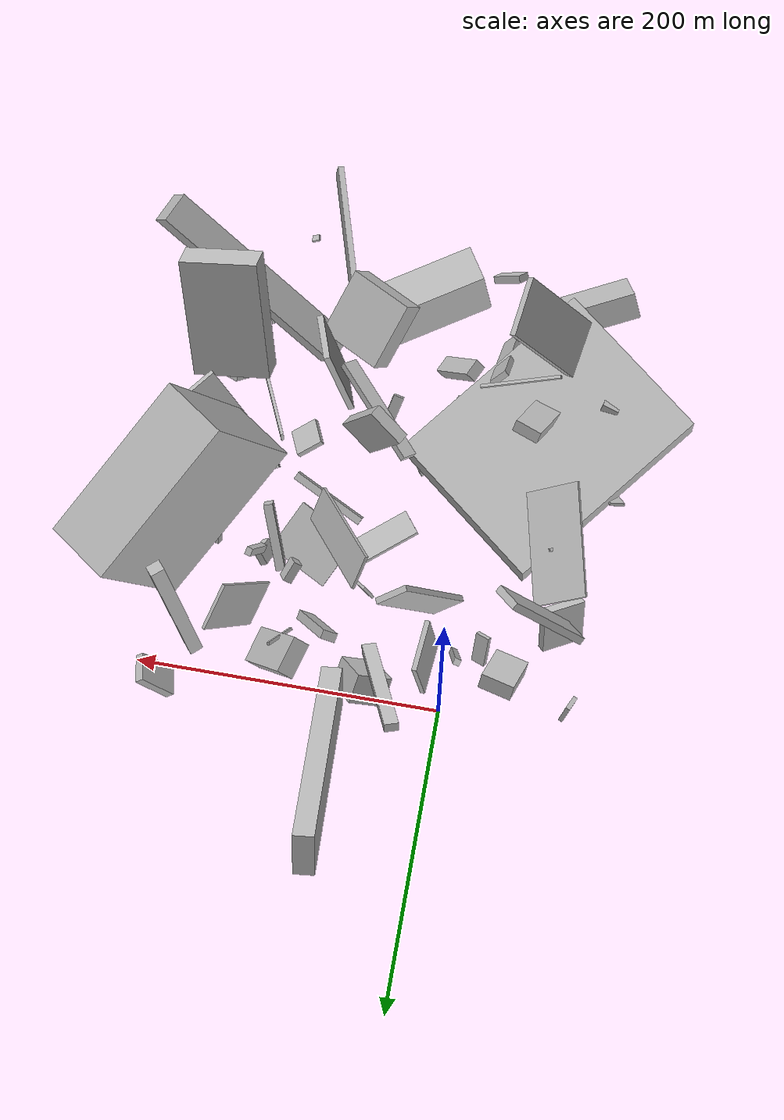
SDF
<sdf version="1.6">
 <world name="default">
  <model name="building_3">
   <static>0</static>
   <pose>5.835858461507819 -122.21662197756149 44.71238421912026 -0.4865778353604829 -1.474053561694862 1.3846577245615164</pose>
   <link name="link">
    <gravity>0</gravity>
    <pose>0 0 74.5 0 0 0</pose>
    <collision name="collision"><geometry><box><size>22 115 149</size></box></geometry></collision>
    <visual name="visual">
     <cast_shadows>0</cast_shadows>
     <geometry><box><size>22 115 149</size></box></geometry>
     <material>
      <script>
       <uri>model://HANNAS_wall/materials/scripts</uri>
       <uri>model://HANNAS_wall/materials/textures</uri>
       <name>vrc/HANNAS_wall</name>
      </script>
     </material>
    </visual>
   </link>
  </model>
  <model name="building_5">
   <static>0</static>
   <pose>65.79338038084802 15.389795078532417 80.16013095305803 -0.07329744564465657 -0.9631267049949173 -1.4160894481976734</pose>
   <link name="link">
    <gravity>0</gravity>
    <pose>0 0 75.0 0 0 0</pose>
    <collision name="collision"><geometry><box><size>31 13 150</size></box></geometry></collision>
    <visual name="visual">
     <cast_shadows>0</cast_shadows>
     <geometry><box><size>31 13 150</size></box></geometry>
     <material>
      <script>
       <uri>model://HANNAS_wall/materials/scripts</uri>
       <uri>model://HANNAS_wall/materials/textures</uri>
       <name>vrc/HANNAS_wall</name>
      </script>
     </material>
    </visual>
   </link>
  </model>
  <model name="building_15">
   <static>0</static>
   <pose>168.70893720154496 -190.80330866939033 55.37333430799978 -0.20980299649126538 0.5808129253188291 -1.6435773203934128</pose>
   <link name="link">
    <gravity>0</gravity>
    <pose>0 0 42.5 0 0 0</pose>
    <collision name="collision"><geometry><box><size>18 51 85</size></box></geometry></collision>
    <visual name="visual">
     <cast_shadows>0</cast_shadows>
     <geometry><box><size>18 51 85</size></box></geometry>
     <material>
      <script>
       <uri>model://HANNAS_wall/materials/scripts</uri>
       <uri>model://HANNAS_wall/materials/textures</uri>
       <name>vrc/HANNAS_wall</name>
      </script>
     </material>
    </visual>
   </link>
  </model>
  <model name="building_16">
   <static>0</static>
   <pose>172.4480563789559 -256.06530838762717 52.13919398344124 -0.10142437449352978 -0.6048599510881316 -0.36942929497885785</pose>
   <link name="link">
    <gravity>0</gravity>
    <pose>0 0 9.0 0 0 0</pose>
    <collision name="collision"><geometry><box><size>150 21 18</size></box></geometry></collision>
    <visual name="visual">
     <cast_shadows>0</cast_shadows>
     <geometry><box><size>150 21 18</size></box></geometry>
     <material>
      <script>
       <uri>model://HANNAS_wall/materials/scripts</uri>
       <uri>model://HANNAS_wall/materials/textures</uri>
       <name>vrc/HANNAS_wall</name>
      </script>
     </material>
    </visual>
   </link>
  </model>
  <model name="building_27">
   <static>0</static>
   <pose>132.2567938228932 -82.57854683447687 13.670138133554069 0.829152997326332 0.5826017921094884 -1.844322049395809</pose>
   <link name="link">
    <gravity>0</gravity>
    <pose>0 0 2.5 0 0 0</pose>
    <collision name="collision"><geometry><box><size>15 11 5</size></box></geometry></collision>
    <visual name="visual">
     <cast_shadows>0</cast_shadows>
     <geometry><box><size>15 11 5</size></box></geometry>
     <material>
      <script>
       <uri>model://HANNAS_wall/materials/scripts</uri>
       <uri>model://HANNAS_wall/materials/textures</uri>
       <name>vrc/HANNAS_wall</name>
      </script>
     </material>
    </visual>
   </link>
  </model>
  <model name="building_34">
   <static>0</static>
   <pose>164.1462934367311 -87.00258705766674 91.69687753364849 0.14673647543493426 0.40451893321257865 0.9899473387207495</pose>
   <link name="link">
    <gravity>0</gravity>
    <pose>0 0 48.5 0 0 0</pose>
    <collision name="collision"><geometry><box><size>114 45 97</size></box></geometry></collision>
    <visual name="visual">
     <cast_shadows>0</cast_shadows>
     <geometry><box><size>114 45 97</size></box></geometry>
     <material>
      <script>
       <uri>model://HANNAS_wall/materials/scripts</uri>
       <uri>model://HANNAS_wall/materials/textures</uri>
       <name>vrc/HANNAS_wall</name>
      </script>
     </material>
    </visual>
   </link>
  </model>
  <model name="building_37">
   <static>0</static>
   <pose>166.95054671278797 -17.908595503135512 85.73106465991597 1.6184008188012624 -0.08403401055581426 2.273886820849268</pose>
   <link name="link">
    <gravity>0</gravity>
    <pose>0 0 4.5 0 0 0</pose>
    <collision name="collision"><geometry><box><size>7 150 9</size></box></geometry></collision>
    <visual name="visual">
     <cast_shadows>0</cast_shadows>
     <geometry><box><size>7 150 9</size></box></geometry>
     <material>
      <script>
       <uri>model://HANNAS_wall/materials/scripts</uri>
       <uri>model://HANNAS_wall/materials/textures</uri>
       <name>vrc/HANNAS_wall</name>
      </script>
     </material>
    </visual>
   </link>
  </model>
  <model name="building_40">
   <static>0</static>
   <pose>61.7476811791285 -3.8057593474671014 27.311445873402633 2.3194962549879037 0.7091316333260866 -0.8224988985748612</pose>
   <link name="link">
    <gravity>0</gravity>
    <pose>0 0 12.5 0 0 0</pose>
    <collision name="collision"><geometry><box><size>27 20 25</size></box></geometry></collision>
    <visual name="visual">
     <cast_shadows>0</cast_shadows>
     <geometry><box><size>27 20 25</size></box></geometry>
     <material>
      <script>
       <uri>model://HANNAS_wall/materials/scripts</uri>
       <uri>model://HANNAS_wall/materials/textures</uri>
       <name>vrc/HANNAS_wall</name>
      </script>
     </material>
    </visual>
   </link>
  </model>
  <model name="building_42">
   <static>0</static>
   <pose>44.557624142193085 -137.68530981630192 90.19917211873633 1.4890378663278445 -0.5933160094880301 0.7728392749617885</pose>
   <link name="link">
    <gravity>0</gravity>
    <pose>0 0 36.5 0 0 0</pose>
    <collision name="collision"><geometry><box><size>11 4 73</size></box></geometry></collision>
    <visual name="visual">
     <cast_shadows>0</cast_shadows>
     <geometry><box><size>11 4 73</size></box></geometry>
     <material>
      <script>
       <uri>model://HANNAS_wall/materials/scripts</uri>
       <uri>model://HANNAS_wall/materials/textures</uri>
       <name>vrc/HANNAS_wall</name>
      </script>
     </material>
    </visual>
   </link>
  </model>
  <model name="building_44">
   <static>0</static>
   <pose>125.6374754572452 -50.624787801604384 115.42600439560675 0.24975198675539606 -1.00457783113855 0.9896721516190242</pose>
   <link name="link">
    <gravity>0</gravity>
    <pose>0 0 2.5 0 0 0</pose>
    <collision name="collision"><geometry><box><size>21 4 5</size></box></geometry></collision>
    <visual name="visual">
     <cast_shadows>0</cast_shadows>
     <geometry><box><size>21 4 5</size></box></geometry>
     <material>
      <script>
       <uri>model://HANNAS_wall/materials/scripts</uri>
       <uri>model://HANNAS_wall/materials/textures</uri>
       <name>vrc/HANNAS_wall</name>
      </script>
     </material>
    </visual>
   </link>
  </model>
  <model name="building_52">
   <static>0</static>
   <pose>-61.26637195700637 -164.86441903570622 12.054112701412631 0.691815409237093 0.6642489602142283 0.9489822027963504</pose>
   <link name="link">
    <gravity>0</gravity>
    <pose>0 0 5.5 0 0 0</pose>
    <collision name="collision"><geometry><box><size>5 9 11</size></box></geometry></collision>
    <visual name="visual">
     <cast_shadows>0</cast_shadows>
     <geometry><box><size>5 9 11</size></box></geometry>
     <material>
      <script>
       <uri>model://HANNAS_wall/materials/scripts</uri>
       <uri>model://HANNAS_wall/materials/textures</uri>
       <name>vrc/HANNAS_wall</name>
      </script>
     </material>
    </visual>
   </link>
  </model>
  <model name="building_61">
   <static>0</static>
   <pose>-55.3433955736428 -46.91709046263416 106.78212802316574 2.0883565669995905 -0.5677516668173401 2.3089985949704084</pose>
   <link name="link">
    <gravity>0</gravity>
    <pose>0 0 2.5 0 0 0</pose>
    <collision name="collision"><geometry><box><size>21 66 5</size></box></geometry></collision>
    <visual name="visual">
     <cast_shadows>0</cast_shadows>
     <geometry><box><size>21 66 5</size></box></geometry>
     <material>
      <script>
       <uri>model://HANNAS_wall/materials/scripts</uri>
       <uri>model://HANNAS_wall/materials/textures</uri>
       <name>vrc/HANNAS_wall</name>
      </script>
     </material>
    </visual>
   </link>
  </model>
  <model name="building_64">
   <static>0</static>
   <pose>-58.892343599622954 -239.5138276054895 54.62001503964828 0.16882700801248593 -0.5515858604315718 2.9187474153281405</pose>
   <link name="link">
    <gravity>0</gravity>
    <pose>0 0 45.0 0 0 0</pose>
    <collision name="collision"><geometry><box><size>4 39 90</size></box></geometry></collision>
    <visual name="visual">
     <cast_shadows>0</cast_shadows>
     <geometry><box><size>4 39 90</size></box></geometry>
     <material>
      <script>
       <uri>model://HANNAS_wall/materials/scripts</uri>
       <uri>model://HANNAS_wall/materials/textures</uri>
       <name>vrc/HANNAS_wall</name>
      </script>
     </material>
    </visual>
   </link>
  </model>
  <model name="building_73">
   <static>0</static>
   <pose>29.263174742191957 -197.66194921209524 10.078805967845 -1.0097486028174925 -1.2960443461740192 0.6047440230803144</pose>
   <link name="link">
    <gravity>0</gravity>
    <pose>0 0 2.0 0 0 0</pose>
    <collision name="collision"><geometry><box><size>4 36 4</size></box></geometry></collision>
    <visual name="visual">
     <cast_shadows>0</cast_shadows>
     <geometry><box><size>4 36 4</size></box></geometry>
     <material>
      <script>
       <uri>model://HANNAS_wall/materials/scripts</uri>
       <uri>model://HANNAS_wall/materials/textures</uri>
       <name>vrc/HANNAS_wall</name>
      </script>
     </material>
    </visual>
   </link>
  </model>
  <model name="building_74">
   <static>0</static>
   <pose>36.37914651228871 10.724045002297046 90.12629533299794 3.0283762311111904 -0.6043471146054245 1.9710083740269009</pose>
   <link name="link">
    <gravity>0</gravity>
    <pose>0 0 3.0 0 0 0</pose>
    <collision name="collision"><geometry><box><size>78 9 6</size></box></geometry></collision>
    <visual name="visual">
     <cast_shadows>0</cast_shadows>
     <geometry><box><size>78 9 6</size></box></geometry>
     <material>
      <script>
       <uri>model://HANNAS_wall/materials/scripts</uri>
       <uri>model://HANNAS_wall/materials/textures</uri>
       <name>vrc/HANNAS_wall</name>
      </script>
     </material>
    </visual>
   </link>
  </model>
  <model name="building_75">
   <static>0</static>
   <pose>109.82374644230782 -170.07132339790942 20.549063269265368 -2.061028093933584 0.25749235485077476 -1.1677177966445669</pose>
   <link name="link">
    <gravity>0</gravity>
    <pose>0 0 9.5 0 0 0</pose>
    <collision name="collision"><geometry><box><size>19 4 19</size></box></geometry></collision>
    <visual name="visual">
     <cast_shadows>0</cast_shadows>
     <geometry><box><size>19 4 19</size></box></geometry>
     <material>
      <script>
       <uri>model://HANNAS_wall/materials/scripts</uri>
       <uri>model://HANNAS_wall/materials/textures</uri>
       <name>vrc/HANNAS_wall</name>
      </script>
     </material>
    </visual>
   </link>
  </model>
  <model name="building_82">
   <static>0</static>
   <pose>96.48357447327915 -243.01251896439027 30.24616295032284 -1.5543337678098073 0.127654479815554 -2.8499054985259953</pose>
   <link name="link">
    <gravity>0</gravity>
    <pose>0 0 58.0 0 0 0</pose>
    <collision name="collision"><geometry><box><size>4 13 116</size></box></geometry></collision>
    <visual name="visual">
     <cast_shadows>0</cast_shadows>
     <geometry><box><size>4 13 116</size></box></geometry>
     <material>
      <script>
       <uri>model://HANNAS_wall/materials/scripts</uri>
       <uri>model://HANNAS_wall/materials/textures</uri>
       <name>vrc/HANNAS_wall</name>
      </script>
     </material>
    </visual>
   </link>
  </model>
  <model name="building_85">
   <static>0</static>
   <pose>-3.3899985874973098 -231.18204135208944 53.07196314889046 2.01111027238802 -0.4294297173551492 -2.454491044709764</pose>
   <link name="link">
    <gravity>0</gravity>
    <pose>0 0 2.0 0 0 0</pose>
    <collision name="collision"><geometry><box><size>12 120 4</size></box></geometry></collision>
    <visual name="visual">
     <cast_shadows>0</cast_shadows>
     <geometry><box><size>12 120 4</size></box></geometry>
     <material>
      <script>
       <uri>model://HANNAS_wall/materials/scripts</uri>
       <uri>model://HANNAS_wall/materials/textures</uri>
       <name>vrc/HANNAS_wall</name>
      </script>
     </material>
    </visual>
   </link>
  </model>
  <model name="building_89">
   <static>0</static>
   <pose>195.3224987451411 -236.1339045592012 13.498993124525631 2.5166109546312683 1.0579943025762824 2.3850651425296387</pose>
   <link name="link">
    <gravity>0</gravity>
    <pose>0 0 2.0 0 0 0</pose>
    <collision name="collision"><geometry><box><size>4 56 4</size></box></geometry></collision>
    <visual name="visual">
     <cast_shadows>0</cast_shadows>
     <geometry><box><size>4 56 4</size></box></geometry>
     <material>
      <script>
       <uri>model://HANNAS_wall/materials/scripts</uri>
       <uri>model://HANNAS_wall/materials/textures</uri>
       <name>vrc/HANNAS_wall</name>
      </script>
     </material>
    </visual>
   </link>
  </model>
  <model name="building_91">
   <static>0</static>
   <pose>-6.971768701030069 -13.800051808755896 99.03814590157036 2.7582999718754277 -1.2587470759005448 1.718607070906877</pose>
   <link name="link">
    <gravity>0</gravity>
    <pose>0 0 2.0 0 0 0</pose>
    <collision name="collision"><geometry><box><size>150 4 4</size></box></geometry></collision>
    <visual name="visual">
     <cast_shadows>0</cast_shadows>
     <geometry><box><size>150 4 4</size></box></geometry>
     <material>
      <script>
       <uri>model://HANNAS_wall/materials/scripts</uri>
       <uri>model://HANNAS_wall/materials/textures</uri>
       <name>vrc/HANNAS_wall</name>
      </script>
     </material>
    </visual>
   </link>
  </model>
  <model name="building_99">
   <static>0</static>
   <pose>20.52833487286761 -45.71792418396285 85.97217253223404 1.553842675139221 0.58668818284419 0.4198085516550854</pose>
   <link name="link">
    <gravity>0</gravity>
    <pose>0 0 2.0 0 0 0</pose>
    <collision name="collision"><geometry><box><size>23 68 4</size></box></geometry></collision>
    <visual name="visual">
     <cast_shadows>0</cast_shadows>
     <geometry><box><size>23 68 4</size></box></geometry>
     <material>
      <script>
       <uri>model://HANNAS_wall/materials/scripts</uri>
       <uri>model://HANNAS_wall/materials/textures</uri>
       <name>vrc/HANNAS_wall</name>
      </script>
     </material>
    </visual>
   </link>
  </model>
  <model name="building_100">
   <static>0</static>
   <pose>179.15003574394075 -136.78032333127882 16.121021043916848 -2.0267733511376993 -0.4415992919007495 -0.6832553546947748</pose>
   <link name="link">
    <gravity>0</gravity>
    <pose>0 0 15.5 0 0 0</pose>
    <collision name="collision"><geometry><box><size>23 4 31</size></box></geometry></collision>
    <visual name="visual">
     <cast_shadows>0</cast_shadows>
     <geometry><box><size>23 4 31</size></box></geometry>
     <material>
      <script>
       <uri>model://HANNAS_wall/materials/scripts</uri>
       <uri>model://HANNAS_wall/materials/textures</uri>
       <name>vrc/HANNAS_wall</name>
      </script>
     </material>
    </visual>
   </link>
  </model>
  <model name="building_101">
   <static>0</static>
   <pose>-36.92626948439068 -16.199778150722643 42.49182938178544 0.05666310473620387 -0.6310907037945896 1.2823759743043501</pose>
   <link name="link">
    <gravity>0</gravity>
    <pose>0 0 5.5 0 0 0</pose>
    <collision name="collision"><geometry><box><size>29 22 11</size></box></geometry></collision>
    <visual name="visual">
     <cast_shadows>0</cast_shadows>
     <geometry><box><size>29 22 11</size></box></geometry>
     <material>
      <script>
       <uri>model://HANNAS_wall/materials/scripts</uri>
       <uri>model://HANNAS_wall/materials/textures</uri>
       <name>vrc/HANNAS_wall</name>
      </script>
     </material>
    </visual>
   </link>
  </model>
  <model name="building_105">
   <static>0</static>
   <pose>119.35325733201266 -14.976122948151325 28.93979419906449 -0.18246758645311192 -0.6452068392558997 -0.17241133505266648</pose>
   <link name="link">
    <gravity>0</gravity>
    <pose>0 0 23.0 0 0 0</pose>
    <collision name="collision"><geometry><box><size>12 24 46</size></box></geometry></collision>
    <visual name="visual">
     <cast_shadows>0</cast_shadows>
     <geometry><box><size>12 24 46</size></box></geometry>
     <material>
      <script>
       <uri>model://HANNAS_wall/materials/scripts</uri>
       <uri>model://HANNAS_wall/materials/textures</uri>
       <name>vrc/HANNAS_wall</name>
      </script>
     </material>
    </visual>
   </link>
  </model>
  <model name="building_106">
   <static>0</static>
   <pose>194.56915995998065 -107.52096577001663 75.06870462631275 -0.02477677075115317 0.11192753015624639 -2.584102283265075</pose>
   <link name="link">
    <gravity>0</gravity>
    <pose>0 0 40.0 0 0 0</pose>
    <collision name="collision"><geometry><box><size>29 4 80</size></box></geometry></collision>
    <visual name="visual">
     <cast_shadows>0</cast_shadows>
     <geometry><box><size>29 4 80</size></box></geometry>
     <material>
      <script>
       <uri>model://HANNAS_wall/materials/scripts</uri>
       <uri>model://HANNAS_wall/materials/textures</uri>
       <name>vrc/HANNAS_wall</name>
      </script>
     </material>
    </visual>
   </link>
  </model>
  <model name="building_114">
   <static>0</static>
   <pose>6.317539681973262 -176.2732418387083 133.18617349557042 1.1746435450948718 -0.0547407093461478 -1.408424669301164</pose>
   <link name="link">
    <gravity>0</gravity>
    <pose>0 0 26.5 0 0 0</pose>
    <collision name="collision"><geometry><box><size>2 2 53</size></box></geometry></collision>
    <visual name="visual">
     <cast_shadows>0</cast_shadows>
     <geometry><box><size>2 2 53</size></box></geometry>
     <material>
      <script>
       <uri>model://HANNAS_wall/materials/scripts</uri>
       <uri>model://HANNAS_wall/materials/textures</uri>
       <name>vrc/HANNAS_wall</name>
      </script>
     </material>
    </visual>
   </link>
  </model>
  <model name="building_116">
   <static>0</static>
   <pose>139.4772387058802 -133.53305393892185 26.108055964541883 0.4323171599113918 -1.2074452802274132 1.6388779635557722</pose>
   <link name="link">
    <gravity>0</gravity>
    <pose>0 0 6.0 0 0 0</pose>
    <collision name="collision"><geometry><box><size>12 21 12</size></box></geometry></collision>
    <visual name="visual">
     <cast_shadows>0</cast_shadows>
     <geometry><box><size>12 21 12</size></box></geometry>
     <material>
      <script>
       <uri>model://HANNAS_wall/materials/scripts</uri>
       <uri>model://HANNAS_wall/materials/textures</uri>
       <name>vrc/HANNAS_wall</name>
      </script>
     </material>
    </visual>
   </link>
  </model>
  <model name="building_117">
   <static>0</static>
   <pose>105.65227817616835 -16.52782892693941 54.47133637446119 -0.9333286394039083 0.5854845523666287 -2.188928638848896</pose>
   <link name="link">
    <gravity>0</gravity>
    <pose>0 0 1.0 0 0 0</pose>
    <collision name="collision"><geometry><box><size>23 2 2</size></box></geometry></collision>
    <visual name="visual">
     <cast_shadows>0</cast_shadows>
     <geometry><box><size>23 2 2</size></box></geometry>
     <material>
      <script>
       <uri>model://HANNAS_wall/materials/scripts</uri>
       <uri>model://HANNAS_wall/materials/textures</uri>
       <name>vrc/HANNAS_wall</name>
      </script>
     </material>
    </visual>
   </link>
  </model>
  <model name="building_120">
   <static>0</static>
   <pose>93.5991870917038 -190.21721835040742 54.807370267244295 0.16780530924934944 -0.07693040965982058 1.900781245938578</pose>
   <link name="link">
    <gravity>0</gravity>
    <pose>0 0 40.0 0 0 0</pose>
    <collision name="collision"><geometry><box><size>30 4 80</size></box></geometry></collision>
    <visual name="visual">
     <cast_shadows>0</cast_shadows>
     <geometry><box><size>30 4 80</size></box></geometry>
     <material>
      <script>
       <uri>model://HANNAS_wall/materials/scripts</uri>
       <uri>model://HANNAS_wall/materials/textures</uri>
       <name>vrc/HANNAS_wall</name>
      </script>
     </material>
    </visual>
   </link>
  </model>
  <model name="building_128">
   <static>0</static>
   <pose>-56.357365353678986 -103.3450022569539 70.84601044754343 -3.040402128490503 -0.6420102758760411 -2.9761333135115557</pose>
   <link name="link">
    <gravity>0</gravity>
    <pose>0 0 1.0 0 0 0</pose>
    <collision name="collision"><geometry><box><size>39 75 2</size></box></geometry></collision>
    <visual name="visual">
     <cast_shadows>0</cast_shadows>
     <geometry><box><size>39 75 2</size></box></geometry>
     <material>
      <script>
       <uri>model://HANNAS_wall/materials/scripts</uri>
       <uri>model://HANNAS_wall/materials/textures</uri>
       <name>vrc/HANNAS_wall</name>
      </script>
     </material>
    </visual>
   </link>
  </model>
  <model name="building_134">
   <static>0</static>
   <pose>-1.268712215430042 -288.94079780663867 53.031909042777514 -0.8022366090224123 -0.5958616014765871 -1.1854161778805807</pose>
   <link name="link">
    <gravity>0</gravity>
    <pose>0 0 5.0 0 0 0</pose>
    <collision name="collision"><geometry><box><size>5 21 10</size></box></geometry></collision>
    <visual name="visual">
     <cast_shadows>0</cast_shadows>
     <geometry><box><size>5 21 10</size></box></geometry>
     <material>
      <script>
       <uri>model://HANNAS_wall/materials/scripts</uri>
       <uri>model://HANNAS_wall/materials/textures</uri>
       <name>vrc/HANNAS_wall</name>
      </script>
     </material>
    </visual>
   </link>
  </model>
  <model name="building_136">
   <static>0</static>
   <pose>-67.91235281918154 -212.17788477907868 18.64241902549604 -1.509110478471502 -0.37097218544958394 2.7016254888694697</pose>
   <link name="link">
    <gravity>0</gravity>
    <pose>0 0 7.5 0 0 0</pose>
    <collision name="collision"><geometry><box><size>53 3 15</size></box></geometry></collision>
    <visual name="visual">
     <cast_shadows>0</cast_shadows>
     <geometry><box><size>53 3 15</size></box></geometry>
     <material>
      <script>
       <uri>model://HANNAS_wall/materials/scripts</uri>
       <uri>model://HANNAS_wall/materials/textures</uri>
       <name>vrc/HANNAS_wall</name>
      </script>
     </material>
    </visual>
   </link>
  </model>
  <model name="building_141">
   <static>0</static>
   <pose>53.51416339574563 -95.75491045260205 16.285657403976106 -1.7610261890515566 -0.17060603293818657 -2.4843605526536723</pose>
   <link name="link">
    <gravity>0</gravity>
    <pose>0 0 9.0 0 0 0</pose>
    <collision name="collision"><geometry><box><size>52 3 18</size></box></geometry></collision>
    <visual name="visual">
     <cast_shadows>0</cast_shadows>
     <geometry><box><size>52 3 18</size></box></geometry>
     <material>
      <script>
       <uri>model://HANNAS_wall/materials/scripts</uri>
       <uri>model://HANNAS_wall/materials/textures</uri>
       <name>vrc/HANNAS_wall</name>
      </script>
     </material>
    </visual>
   </link>
  </model>
  <model name="building_142">
   <static>0</static>
   <pose>60.00356231525827 -65.9634852975602 28.91624590082394 3.0194260157562414 -1.3717235022639511 1.122095181261449</pose>
   <link name="link">
    <gravity>0</gravity>
    <pose>0 0 1.0 0 0 0</pose>
    <collision name="collision"><geometry><box><size>49 8 2</size></box></geometry></collision>
    <visual name="visual">
     <cast_shadows>0</cast_shadows>
     <geometry><box><size>49 8 2</size></box></geometry>
     <material>
      <script>
       <uri>model://HANNAS_wall/materials/scripts</uri>
       <uri>model://HANNAS_wall/materials/textures</uri>
       <name>vrc/HANNAS_wall</name>
      </script>
     </material>
    </visual>
   </link>
  </model>
  <model name="building_148">
   <static>0</static>
   <pose>-78.08360688517408 -208.35850938423624 62.9932138141467 2.55125686068064 0.17984389306172194 2.8948955098153903</pose>
   <link name="link">
    <gravity>0</gravity>
    <pose>0 0 4.5 0 0 0</pose>
    <collision name="collision"><geometry><box><size>11 17 9</size></box></geometry></collision>
    <visual name="visual">
     <cast_shadows>0</cast_shadows>
     <geometry><box><size>11 17 9</size></box></geometry>
     <material>
      <script>
       <uri>model://HANNAS_wall/materials/scripts</uri>
       <uri>model://HANNAS_wall/materials/textures</uri>
       <name>vrc/HANNAS_wall</name>
      </script>
     </material>
    </visual>
   </link>
  </model>
  <model name="building_152">
   <static>0</static>
   <pose>96.70972766722336 -124.59834590544806 15.19560699587775 -0.4101680363073496 -1.1325891760108002 1.5141393072712013</pose>
   <link name="link">
    <gravity>0</gravity>
    <pose>0 0 2.5 0 0 0</pose>
    <collision name="collision"><geometry><box><size>8 52 5</size></box></geometry></collision>
    <visual name="visual">
     <cast_shadows>0</cast_shadows>
     <geometry><box><size>8 52 5</size></box></geometry>
     <material>
      <script>
       <uri>model://HANNAS_wall/materials/scripts</uri>
       <uri>model://HANNAS_wall/materials/textures</uri>
       <name>vrc/HANNAS_wall</name>
      </script>
     </material>
    </visual>
   </link>
  </model>
  <model name="building_155">
   <static>0</static>
   <pose>34.78574455814165 -228.05472802518344 25.49723136767581 -0.06122727143695152 -0.6647944384842174 -0.3939602315092116</pose>
   <link name="link">
    <gravity>0</gravity>
    <pose>0 0 19.5 0 0 0</pose>
    <collision name="collision"><geometry><box><size>8 12 39</size></box></geometry></collision>
    <visual name="visual">
     <cast_shadows>0</cast_shadows>
     <geometry><box><size>8 12 39</size></box></geometry>
     <material>
      <script>
       <uri>model://HANNAS_wall/materials/scripts</uri>
       <uri>model://HANNAS_wall/materials/textures</uri>
       <name>vrc/HANNAS_wall</name>
      </script>
     </material>
    </visual>
   </link>
  </model>
  <model name="building_156">
   <static>0</static>
   <pose>194.83779080708803 -94.99685341065737 30.421895287935396 2.6191738801102495 0.09474538432446446 -1.5113322552935415</pose>
   <link name="link">
    <gravity>0</gravity>
    <pose>0 0 7.5 0 0 0</pose>
    <collision name="collision"><geometry><box><size>2 8 15</size></box></geometry></collision>
    <visual name="visual">
     <cast_shadows>0</cast_shadows>
     <geometry><box><size>2 8 15</size></box></geometry>
     <material>
      <script>
       <uri>model://HANNAS_wall/materials/scripts</uri>
       <uri>model://HANNAS_wall/materials/textures</uri>
       <name>vrc/HANNAS_wall</name>
      </script>
     </material>
    </visual>
   </link>
  </model>
  <model name="building_164">
   <static>0</static>
   <pose>51.92002940799563 -262.68114163610244 27.551997127797136 0.15429191538921208 0.11461741274165403 0.5461427248540964</pose>
   <link name="link">
    <gravity>0</gravity>
    <pose>0 0 19.5 0 0 0</pose>
    <collision name="collision"><geometry><box><size>80 26 39</size></box></geometry></collision>
    <visual name="visual">
     <cast_shadows>0</cast_shadows>
     <geometry><box><size>80 26 39</size></box></geometry>
     <material>
      <script>
       <uri>model://HANNAS_wall/materials/scripts</uri>
       <uri>model://HANNAS_wall/materials/textures</uri>
       <name>vrc/HANNAS_wall</name>
      </script>
     </material>
    </visual>
   </link>
  </model>
  <model name="building_169">
   <static>0</static>
   <pose>78.10612916249474 -79.92867552380949 82.7364725391432 0.9278569528053925 -0.5901252127598116 2.173762366943676</pose>
   <link name="link">
    <gravity>0</gravity>
    <pose>0 0 1.0 0 0 0</pose>
    <collision name="collision"><geometry><box><size>80 24 2</size></box></geometry></collision>
    <visual name="visual">
     <cast_shadows>0</cast_shadows>
     <geometry><box><size>80 24 2</size></box></geometry>
     <material>
      <script>
       <uri>model://HANNAS_wall/materials/scripts</uri>
       <uri>model://HANNAS_wall/materials/textures</uri>
       <name>vrc/HANNAS_wall</name>
      </script>
     </material>
    </visual>
   </link>
  </model>
  <model name="building_171">
   <static>0</static>
   <pose>150.8112766996759 -202.58059200771353 10.956837550199635 3.068058560233254 -0.004590262554175821 -2.7256896606806835</pose>
   <link name="link">
    <gravity>0</gravity>
    <pose>0 0 5.0 0 0 0</pose>
    <collision name="collision"><geometry><box><size>2 80 10</size></box></geometry></collision>
    <visual name="visual">
     <cast_shadows>0</cast_shadows>
     <geometry><box><size>2 80 10</size></box></geometry>
     <material>
      <script>
       <uri>model://HANNAS_wall/materials/scripts</uri>
       <uri>model://HANNAS_wall/materials/textures</uri>
       <name>vrc/HANNAS_wall</name>
      </script>
     </material>
    </visual>
   </link>
  </model>
  <model name="building_180">
   <static>0</static>
   <pose>187.13299791823061 -92.78522333363244 12.30140559900657 -2.2050308788974595 -0.2760098050893498 2.817054307828458</pose>
   <link name="link">
    <gravity>0</gravity>
    <pose>0 0 2.0 0 0 0</pose>
    <collision name="collision"><geometry><box><size>57 6 4</size></box></geometry></collision>
    <visual name="visual">
     <cast_shadows>0</cast_shadows>
     <geometry><box><size>57 6 4</size></box></geometry>
     <material>
      <script>
       <uri>model://HANNAS_wall/materials/scripts</uri>
       <uri>model://HANNAS_wall/materials/textures</uri>
       <name>vrc/HANNAS_wall</name>
      </script>
     </material>
    </visual>
   </link>
  </model>
  <model name="building_182">
   <static>0</static>
   <pose>179.16676383065294 -145.21648627453033 42.92970415849442 2.334961761131234 0.4061917839359878 -0.6396554686529267</pose>
   <link name="link">
    <gravity>0</gravity>
    <pose>0 0 1.0 0 0 0</pose>
    <collision name="collision"><geometry><box><size>7 30 2</size></box></geometry></collision>
    <visual name="visual">
     <cast_shadows>0</cast_shadows>
     <geometry><box><size>7 30 2</size></box></geometry>
     <material>
      <script>
       <uri>model://HANNAS_wall/materials/scripts</uri>
       <uri>model://HANNAS_wall/materials/textures</uri>
       <name>vrc/HANNAS_wall</name>
      </script>
     </material>
    </visual>
   </link>
  </model>
  <model name="building_184">
   <static>0</static>
   <pose>-81.06122852054129 -14.247819657294981 10.83455134052759 1.6919659520291126 -1.0127716881451487 -2.0834256190751694</pose>
   <link name="link">
    <gravity>0</gravity>
    <pose>0 0 1.5 0 0 0</pose>
    <collision name="collision"><geometry><box><size>13 13 3</size></box></geometry></collision>
    <visual name="visual">
     <cast_shadows>0</cast_shadows>
     <geometry><box><size>13 13 3</size></box></geometry>
     <material>
      <script>
       <uri>model://HANNAS_wall/materials/scripts</uri>
       <uri>model://HANNAS_wall/materials/textures</uri>
       <name>vrc/HANNAS_wall</name>
      </script>
     </material>
    </visual>
   </link>
  </model>
  <model name="building_185">
   <static>0</static>
   <pose>66.16451415441134 -186.67410108280524 17.20497234869282 -0.3664035278880844 -0.8389400392621159 1.7321264076213607</pose>
   <link name="link">
    <gravity>0</gravity>
    <pose>0 0 9.5 0 0 0</pose>
    <collision name="collision"><geometry><box><size>3 7 19</size></box></geometry></collision>
    <visual name="visual">
     <cast_shadows>0</cast_shadows>
     <geometry><box><size>3 7 19</size></box></geometry>
     <material>
      <script>
       <uri>model://HANNAS_wall/materials/scripts</uri>
       <uri>model://HANNAS_wall/materials/textures</uri>
       <name>vrc/HANNAS_wall</name>
      </script>
     </material>
    </visual>
   </link>
  </model>
  <model name="building_186">
   <static>0</static>
   <pose>105.53828255220822 -247.50333398251405 62.6544104422827 1.3777853577235806 -0.5842940684022799 -1.9946650681262132</pose>
   <link name="link">
    <gravity>0</gravity>
    <pose>0 0 22.5 0 0 0</pose>
    <collision name="collision"><geometry><box><size>46 18 45</size></box></geometry></collision>
    <visual name="visual">
     <cast_shadows>0</cast_shadows>
     <geometry><box><size>46 18 45</size></box></geometry>
     <material>
      <script>
       <uri>model://HANNAS_wall/materials/scripts</uri>
       <uri>model://HANNAS_wall/materials/textures</uri>
       <name>vrc/HANNAS_wall</name>
      </script>
     </material>
    </visual>
   </link>
  </model>
  <model name="building_188">
   <static>0</static>
   <pose>-67.45297299665475 -66.2169491100833 27.47438764040141 0.4738099375551583 -0.9931155094660873 -1.420171860039519</pose>
   <link name="link">
    <gravity>0</gravity>
    <pose>0 0 3.0 0 0 0</pose>
    <collision name="collision"><geometry><box><size>32 29 6</size></box></geometry></collision>
    <visual name="visual">
     <cast_shadows>0</cast_shadows>
     <geometry><box><size>32 29 6</size></box></geometry>
     <material>
      <script>
       <uri>model://HANNAS_wall/materials/scripts</uri>
       <uri>model://HANNAS_wall/materials/textures</uri>
       <name>vrc/HANNAS_wall</name>
      </script>
     </material>
    </visual>
   </link>
  </model>
  <model name="building_189">
   <static>0</static>
   <pose>-49.730445278862035 -227.30683937202605 31.472876945648522 -0.037158959834891654 -0.8751849129564484 -1.9150625333128333</pose>
   <link name="link">
    <gravity>0</gravity>
    <pose>0 0 40.0 0 0 0</pose>
    <collision name="collision"><geometry><box><size>8 18 80</size></box></geometry></collision>
    <visual name="visual">
     <cast_shadows>0</cast_shadows>
     <geometry><box><size>8 18 80</size></box></geometry>
     <material>
      <script>
       <uri>model://HANNAS_wall/materials/scripts</uri>
       <uri>model://HANNAS_wall/materials/textures</uri>
       <name>vrc/HANNAS_wall</name>
      </script>
     </material>
    </visual>
   </link>
  </model>
  <model name="building_193">
   <static>0</static>
   <pose>153.48292789624153 -245.82796401709803 10.44436348083883 -0.963572611036804 0.7850019809872566 -2.188511387395987</pose>
   <link name="link">
    <gravity>0</gravity>
    <pose>0 0 14.5 0 0 0</pose>
    <collision name="collision"><geometry><box><size>8 2 29</size></box></geometry></collision>
    <visual name="visual">
     <cast_shadows>0</cast_shadows>
     <geometry><box><size>8 2 29</size></box></geometry>
     <material>
      <script>
       <uri>model://HANNAS_wall/materials/scripts</uri>
       <uri>model://HANNAS_wall/materials/textures</uri>
       <name>vrc/HANNAS_wall</name>
      </script>
     </material>
    </visual>
   </link>
  </model>
  <model name="building_194">
   <static>0</static>
   <pose>168.4847925298393 -223.3183800408435 27.10457091998793 -2.7005212111220405 -0.7277651254844456 0.8214585684343366</pose>
   <link name="link">
    <gravity>0</gravity>
    <pose>0 0 13.5 0 0 0</pose>
    <collision name="collision"><geometry><box><size>17 9 27</size></box></geometry></collision>
    <visual name="visual">
     <cast_shadows>0</cast_shadows>
     <geometry><box><size>17 9 27</size></box></geometry>
     <material>
      <script>
       <uri>model://HANNAS_wall/materials/scripts</uri>
       <uri>model://HANNAS_wall/materials/textures</uri>
       <name>vrc/HANNAS_wall</name>
      </script>
     </material>
    </visual>
   </link>
  </model>
  <model name="building_207">
   <static>0</static>
   <pose>-39.26574198203524 -273.2168506508863 36.04082661321766 -1.3822123935935064 -0.8453604735815535 1.8609270263897557</pose>
   <link name="link">
    <gravity>0</gravity>
    <pose>0 0 23.0 0 0 0</pose>
    <collision name="collision"><geometry><box><size>34 17 46</size></box></geometry></collision>
    <visual name="visual">
     <cast_shadows>0</cast_shadows>
     <geometry><box><size>34 17 46</size></box></geometry>
     <material>
      <script>
       <uri>model://HANNAS_wall/materials/scripts</uri>
       <uri>model://HANNAS_wall/materials/textures</uri>
       <name>vrc/HANNAS_wall</name>
      </script>
     </material>
    </visual>
   </link>
  </model>
  <model name="building_216">
   <static>0</static>
   <pose>-91.85003660430631 -144.93844562012424 46.107480417081916 2.412300369921842 -0.29668153686143317 0.22101186829041833</pose>
   <link name="link">
    <gravity>0</gravity>
    <pose>0 0 7.0 0 0 0</pose>
    <collision name="collision"><geometry><box><size>10 2 14</size></box></geometry></collision>
    <visual name="visual">
     <cast_shadows>0</cast_shadows>
     <geometry><box><size>10 2 14</size></box></geometry>
     <material>
      <script>
       <uri>model://HANNAS_wall/materials/scripts</uri>
       <uri>model://HANNAS_wall/materials/textures</uri>
       <name>vrc/HANNAS_wall</name>
      </script>
     </material>
    </visual>
   </link>
  </model>
  <model name="building_217">
   <static>0</static>
   <pose>133.46716982630346 -292.6518847187133 57.106915921948364 -1.4875880089680413 0.48117323720448557 0.16447895610004903</pose>
   <link name="link">
    <gravity>0</gravity>
    <pose>0 0 2.0 0 0 0</pose>
    <collision name="collision"><geometry><box><size>5 2 4</size></box></geometry></collision>
    <visual name="visual">
     <cast_shadows>0</cast_shadows>
     <geometry><box><size>5 2 4</size></box></geometry>
     <material>
      <script>
       <uri>model://HANNAS_wall/materials/scripts</uri>
       <uri>model://HANNAS_wall/materials/textures</uri>
       <name>vrc/HANNAS_wall</name>
      </script>
     </material>
    </visual>
   </link>
  </model>
  <model name="building_219">
   <static>0</static>
   <pose>184.62097140938425 5.737164619299367 25.640411126513275 1.2464743309336592 0.8745258592512195 3.0909525234444626</pose>
   <link name="link">
    <gravity>0</gravity>
    <pose>0 0 9.5 0 0 0</pose>
    <collision name="collision"><geometry><box><size>29 6 19</size></box></geometry></collision>
    <visual name="visual">
     <cast_shadows>0</cast_shadows>
     <geometry><box><size>29 6 19</size></box></geometry>
     <material>
      <script>
       <uri>model://HANNAS_wall/materials/scripts</uri>
       <uri>model://HANNAS_wall/materials/textures</uri>
       <name>vrc/HANNAS_wall</name>
      </script>
     </material>
    </visual>
   </link>
  </model>
  <model name="building_224">
   <static>0</static>
   <pose>-54.200628353830616 -94.51488571632335 81.44772154450592 1.3679459192590524 -0.3416072706958728 0.3861472633133835</pose>
   <link name="link">
    <gravity>0</gravity>
    <pose>0 0 1.0 0 0 0</pose>
    <collision name="collision"><geometry><box><size>2 2 2</size></box></geometry></collision>
    <visual name="visual">
     <cast_shadows>0</cast_shadows>
     <geometry><box><size>2 2 2</size></box></geometry>
     <material>
      <script>
       <uri>model://HANNAS_wall/materials/scripts</uri>
       <uri>model://HANNAS_wall/materials/textures</uri>
       <name>vrc/HANNAS_wall</name>
      </script>
     </material>
    </visual>
   </link>
  </model>
  <model name="building_229">
   <static>0</static>
   <pose>138.60199278163904 -35.09046106686001 48.65260134349188 1.443425745719793 -0.4251939674364073 -1.8878047309882335</pose>
   <link name="link">
    <gravity>0</gravity>
    <pose>0 0 1.0 0 0 0</pose>
    <collision name="collision"><geometry><box><size>31 80 2</size></box></geometry></collision>
    <visual name="visual">
     <cast_shadows>0</cast_shadows>
     <geometry><box><size>31 80 2</size></box></geometry>
     <material>
      <script>
       <uri>model://HANNAS_wall/materials/scripts</uri>
       <uri>model://HANNAS_wall/materials/textures</uri>
       <name>vrc/HANNAS_wall</name>
      </script>
     </material>
    </visual>
   </link>
  </model>
  <model name="building_231">
   <static>0</static>
   <pose>126.95317495017792 -88.84527415523705 31.53933779686063 1.4177694106316656 -0.5608298920838555 -1.191004711123296</pose>
   <link name="link">
    <gravity>0</gravity>
    <pose>0 0 3.0 0 0 0</pose>
    <collision name="collision"><geometry><box><size>45 10 6</size></box></geometry></collision>
    <visual name="visual">
     <cast_shadows>0</cast_shadows>
     <geometry><box><size>45 10 6</size></box></geometry>
     <material>
      <script>
       <uri>model://HANNAS_wall/materials/scripts</uri>
       <uri>model://HANNAS_wall/materials/textures</uri>
       <name>vrc/HANNAS_wall</name>
      </script>
     </material>
    </visual>
   </link>
  </model>
  <model name="building_236">
   <static>0</static>
   <pose>28.875893901633273 -163.93500335538886 22.7498560639828 1.7205604086229935 0.005228992060174847 2.27822605056777</pose>
   <link name="link">
    <gravity>0</gravity>
    <pose>0 0 7.5 0 0 0</pose>
    <collision name="collision"><geometry><box><size>3 22 15</size></box></geometry></collision>
    <visual name="visual">
     <cast_shadows>0</cast_shadows>
     <geometry><box><size>3 22 15</size></box></geometry>
     <material>
      <script>
       <uri>model://HANNAS_wall/materials/scripts</uri>
       <uri>model://HANNAS_wall/materials/textures</uri>
       <name>vrc/HANNAS_wall</name>
      </script>
     </material>
    </visual>
   </link>
  </model>
  <model name="building_242">
   <static>0</static>
   <pose>158.16706397539133 -158.0323628814981 77.57809692614399 -1.9425625419920105 -1.1132765824415825 -0.36843595591200107</pose>
   <link name="link">
    <gravity>0</gravity>
    <pose>0 0 23.0 0 0 0</pose>
    <collision name="collision"><geometry><box><size>80 3 46</size></box></geometry></collision>
    <visual name="visual">
     <cast_shadows>0</cast_shadows>
     <geometry><box><size>80 3 46</size></box></geometry>
     <material>
      <script>
       <uri>model://HANNAS_wall/materials/scripts</uri>
       <uri>model://HANNAS_wall/materials/textures</uri>
       <name>vrc/HANNAS_wall</name>
      </script>
     </material>
    </visual>
   </link>
  </model>
  <model name="building_243">
   <static>0</static>
   <pose>8.482694794984909 -6.789705869603371 76.1987750068275 -0.0516384075420577 -0.09836867781011184 -1.6634305285986348</pose>
   <link name="link">
    <gravity>0</gravity>
    <pose>0 0 40.0 0 0 0</pose>
    <collision name="collision"><geometry><box><size>31 3 80</size></box></geometry></collision>
    <visual name="visual">
     <cast_shadows>0</cast_shadows>
     <geometry><box><size>31 3 80</size></box></geometry>
     <material>
      <script>
       <uri>model://HANNAS_wall/materials/scripts</uri>
       <uri>model://HANNAS_wall/materials/textures</uri>
       <name>vrc/HANNAS_wall</name>
      </script>
     </material>
    </visual>
   </link>
  </model>
  <model name="building_245">
   <static>0</static>
   <pose>94.510210981977 -39.05602849404499 33.53244473517621 0.5194498459665591 -0.3863020296420915 -1.7912107529504449</pose>
   <link name="link">
    <gravity>0</gravity>
    <pose>0 0 25.0 0 0 0</pose>
    <collision name="collision"><geometry><box><size>6 10 50</size></box></geometry></collision>
    <visual name="visual">
     <cast_shadows>0</cast_shadows>
     <geometry><box><size>6 10 50</size></box></geometry>
     <material>
      <script>
       <uri>model://HANNAS_wall/materials/scripts</uri>
       <uri>model://HANNAS_wall/materials/textures</uri>
       <name>vrc/HANNAS_wall</name>
      </script>
     </material>
    </visual>
   </link>
  </model>
  <model name="building_250">
   <static>0</static>
   <pose>110.05255710664898 -67.66843579153478 40.78147337858139 0.5914338173149073 0.5745794699892853 3.0486038004549143</pose>
   <link name="link">
    <gravity>0</gravity>
    <pose>0 0 4.5 0 0 0</pose>
    <collision name="collision"><geometry><box><size>6 14 9</size></box></geometry></collision>
    <visual name="visual">
     <cast_shadows>0</cast_shadows>
     <geometry><box><size>6 14 9</size></box></geometry>
     <material>
      <script>
       <uri>model://HANNAS_wall/materials/scripts</uri>
       <uri>model://HANNAS_wall/materials/textures</uri>
       <name>vrc/HANNAS_wall</name>
      </script>
     </material>
    </visual>
   </link>
  </model>
  <model name="building_251">
   <static>0</static>
   <pose>-19.78809888704147 -40.95773476208048 18.294073067934537 2.2252775253153048 0.34431882538654857 -0.44826104002585704</pose>
   <link name="link">
    <gravity>0</gravity>
    <pose>0 0 1.5 0 0 0</pose>
    <collision name="collision"><geometry><box><size>10 21 3</size></box></geometry></collision>
    <visual name="visual">
     <cast_shadows>0</cast_shadows>
     <geometry><box><size>10 21 3</size></box></geometry>
     <material>
      <script>
       <uri>model://HANNAS_wall/materials/scripts</uri>
       <uri>model://HANNAS_wall/materials/textures</uri>
       <name>vrc/HANNAS_wall</name>
      </script>
     </material>
    </visual>
   </link>
  </model>
  <model name="building_256">
   <static>0</static>
   <pose>99.73287157750968 -93.67548865367182 15.335890895588925 0.41256721255151585 0.09143868283979849 2.6702690807304994</pose>
   <link name="link">
    <gravity>0</gravity>
    <pose>0 0 1.0 0 0 0</pose>
    <collision name="collision"><geometry><box><size>43 37 2</size></box></geometry></collision>
    <visual name="visual">
     <cast_shadows>0</cast_shadows>
     <geometry><box><size>43 37 2</size></box></geometry>
     <material>
      <script>
       <uri>model://HANNAS_wall/materials/scripts</uri>
       <uri>model://HANNAS_wall/materials/textures</uri>
       <name>vrc/HANNAS_wall</name>
      </script>
     </material>
    </visual>
   </link>
  </model>
  <model name="building_258">
   <static>0</static>
   <pose>78.98171825735606 -155.14945243827515 69.16666067386586 0.4271621216441111 0.08264553058798003 -2.085036551444884</pose>
   <link name="link">
    <gravity>0</gravity>
    <pose>0 0 25.5 0 0 0</pose>
    <collision name="collision"><geometry><box><size>8 26 51</size></box></geometry></collision>
    <visual name="visual">
     <cast_shadows>0</cast_shadows>
     <geometry><box><size>8 26 51</size></box></geometry>
     <material>
      <script>
       <uri>model://HANNAS_wall/materials/scripts</uri>
       <uri>model://HANNAS_wall/materials/textures</uri>
       <name>vrc/HANNAS_wall</name>
      </script>
     </material>
    </visual>
   </link>
  </model>
 </world>
</sdf>
